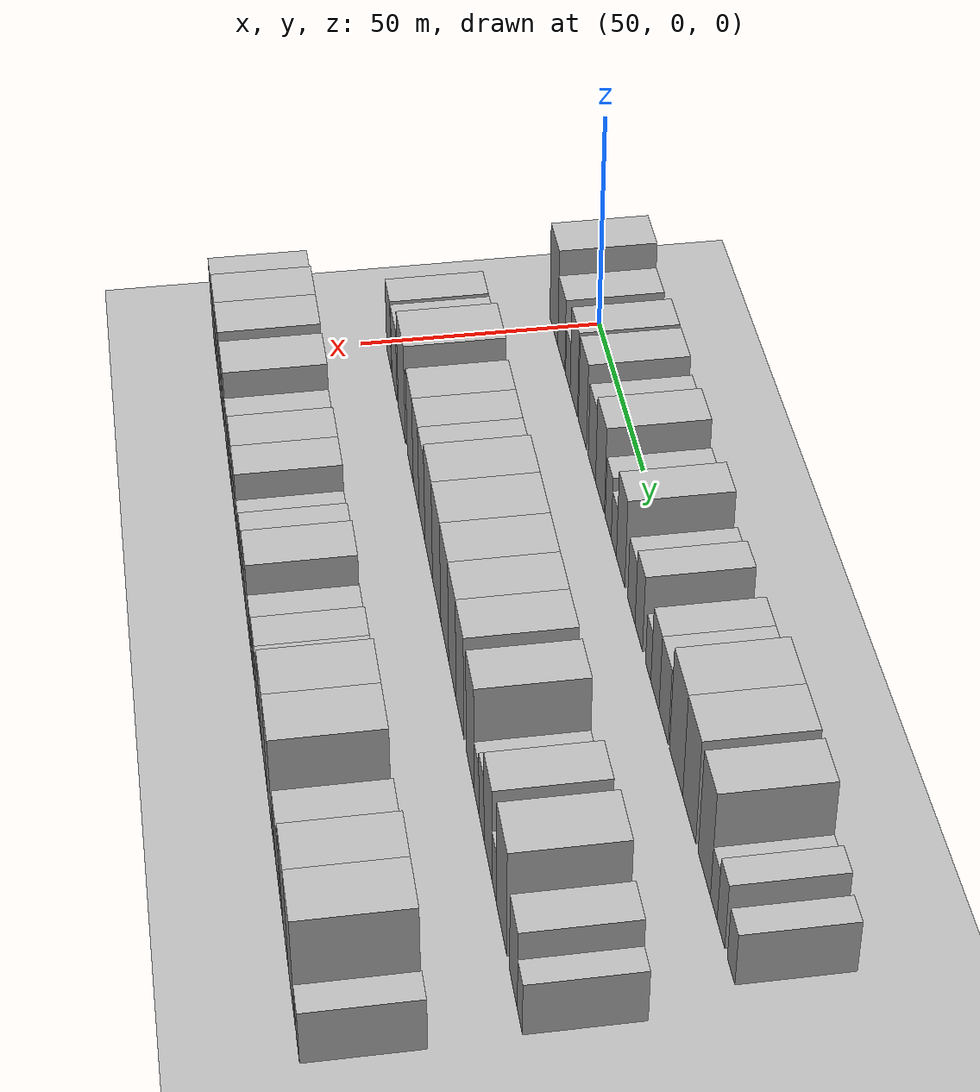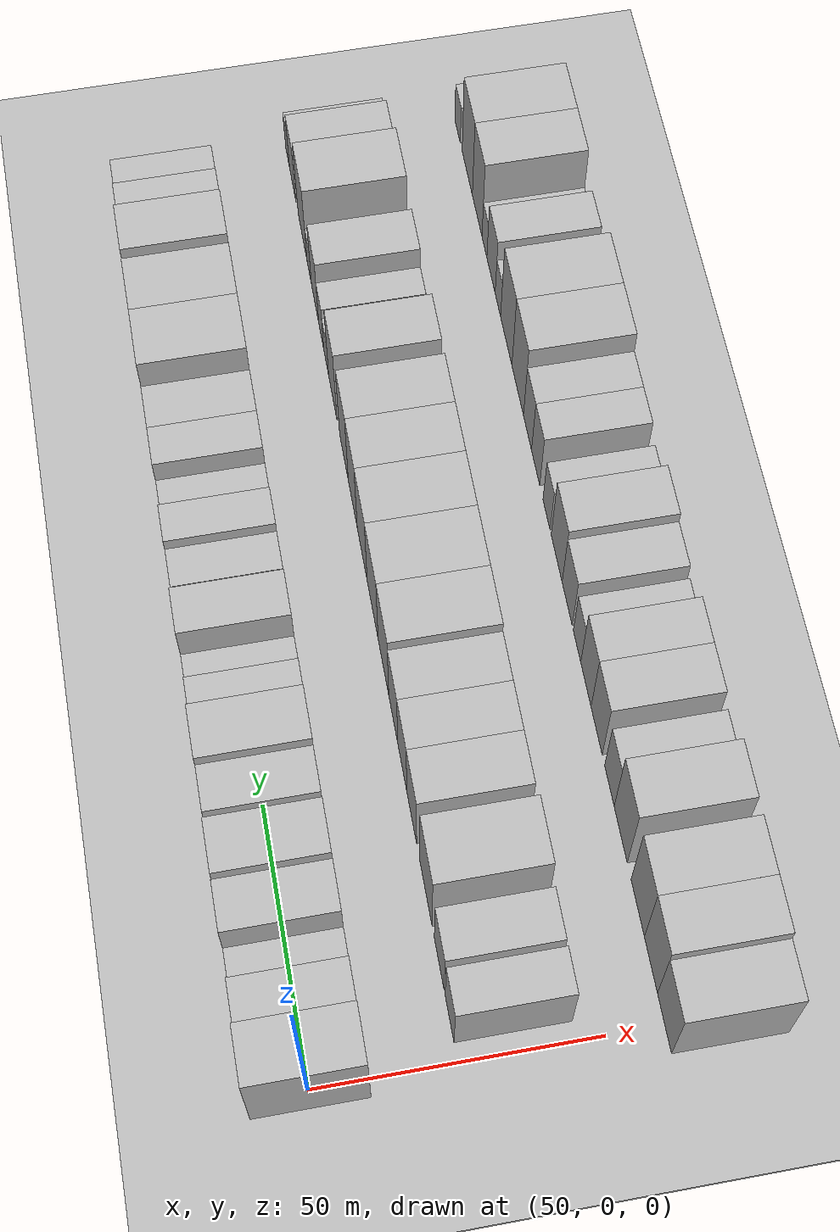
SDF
<sdf version="1.6">
 <world name="default">
  <include><name>ground_plane_1</name><uri>model://HANNAS_ground_plane</uri></include>
  <include>
   <name>ground_plane_2</name>
   <uri>model://HANNAS_ground_plane</uri>
   <pose>100 0 0  0 0 0</pose>
  </include>
  <model name="building_42">
   <static>1</static>
   <pose>50.0000 2.0145 0 0.000000 0.000000 0.000000</pose>
   <link name="link">
    <pose>0 0 12.00 0 0 0</pose>
    <collision name="collision"><geometry><box><size>20.0000 10.2558 24.0000</size></box></geometry></collision>
    <visual name="visual">
     <cast_shadows>0</cast_shadows>
     <geometry><box><size>20.0000 10.2558 24.0000</size></box></geometry>
     <material>
      <script>
       <uri>model://HANNAS_wall/materials/scripts</uri>
       <uri>model://HANNAS_wall/materials/textures</uri>
       <name>vrc/HANNAS_wall</name>
      </script>
     </material>
    </visual>
   </link>
  </model>
  <model name="building_43">
   <static>1</static>
   <pose>50.0000 11.5758 0 0.000000 0.000000 0.000000</pose>
   <link name="link">
    <pose>0 0 9.00 0 0 0</pose>
    <collision name="collision"><geometry><box><size>20.0000 8.8667 18.0000</size></box></geometry></collision>
    <visual name="visual">
     <cast_shadows>0</cast_shadows>
     <geometry><box><size>20.0000 8.8667 18.0000</size></box></geometry>
     <material>
      <script>
       <uri>model://HANNAS_wall/materials/scripts</uri>
       <uri>model://HANNAS_wall/materials/textures</uri>
       <name>vrc/HANNAS_wall</name>
      </script>
     </material>
    </visual>
   </link>
  </model>
  <model name="building_44">
   <static>1</static>
   <pose>50.0000 19.8012 0 0.000000 0.000000 0.000000</pose>
   <link name="link">
    <pose>0 0 6.00 0 0 0</pose>
    <collision name="collision"><geometry><box><size>20.0000 5.5843 12.0000</size></box></geometry></collision>
    <visual name="visual">
     <cast_shadows>0</cast_shadows>
     <geometry><box><size>20.0000 5.5843 12.0000</size></box></geometry>
     <material>
      <script>
       <uri>model://HANNAS_wall/materials/scripts</uri>
       <uri>model://HANNAS_wall/materials/textures</uri>
       <name>vrc/HANNAS_wall</name>
      </script>
     </material>
    </visual>
   </link>
  </model>
  <model name="building_45">
   <static>1</static>
   <pose>50.0000 27.0636 0 0.000000 0.000000 0.000000</pose>
   <link name="link">
    <pose>0 0 10.50 0 0 0</pose>
    <collision name="collision"><geometry><box><size>20.0000 8.9404 21.0000</size></box></geometry></collision>
    <visual name="visual">
     <cast_shadows>0</cast_shadows>
     <geometry><box><size>20.0000 8.9404 21.0000</size></box></geometry>
     <material>
      <script>
       <uri>model://HANNAS_wall/materials/scripts</uri>
       <uri>model://HANNAS_wall/materials/textures</uri>
       <name>vrc/HANNAS_wall</name>
      </script>
     </material>
    </visual>
   </link>
  </model>
  <model name="building_46">
   <static>1</static>
   <pose>50.0000 37.3804 0 0.000000 0.000000 0.000000</pose>
   <link name="link">
    <pose>0 0 10.50 0 0 0</pose>
    <collision name="collision"><geometry><box><size>20.0000 9.6932 21.0000</size></box></geometry></collision>
    <visual name="visual">
     <cast_shadows>0</cast_shadows>
     <geometry><box><size>20.0000 9.6932 21.0000</size></box></geometry>
     <material>
      <script>
       <uri>model://HANNAS_wall/materials/scripts</uri>
       <uri>model://HANNAS_wall/materials/textures</uri>
       <name>vrc/HANNAS_wall</name>
      </script>
     </material>
    </visual>
   </link>
  </model>
  <model name="building_47">
   <static>1</static>
   <pose>50.0000 48.4204 0 0.000000 0.000000 0.000000</pose>
   <link name="link">
    <pose>0 0 9.00 0 0 0</pose>
    <collision name="collision"><geometry><box><size>20.0000 8.3869 18.0000</size></box></geometry></collision>
    <visual name="visual">
     <cast_shadows>0</cast_shadows>
     <geometry><box><size>20.0000 8.3869 18.0000</size></box></geometry>
     <material>
      <script>
       <uri>model://HANNAS_wall/materials/scripts</uri>
       <uri>model://HANNAS_wall/materials/textures</uri>
       <name>vrc/HANNAS_wall</name>
      </script>
     </material>
    </visual>
   </link>
  </model>
  <model name="building_48">
   <static>1</static>
   <pose>50.0000 57.5546 0 0.000000 0.000000 0.000000</pose>
   <link name="link">
    <pose>0 0 10.50 0 0 0</pose>
    <collision name="collision"><geometry><box><size>20.0000 9.8814 21.0000</size></box></geometry></collision>
    <visual name="visual">
     <cast_shadows>0</cast_shadows>
     <geometry><box><size>20.0000 9.8814 21.0000</size></box></geometry>
     <material>
      <script>
       <uri>model://HANNAS_wall/materials/scripts</uri>
       <uri>model://HANNAS_wall/materials/textures</uri>
       <name>vrc/HANNAS_wall</name>
      </script>
     </material>
    </visual>
   </link>
  </model>
  <model name="building_49">
   <static>1</static>
   <pose>50.0000 66.7380 0 0.000000 0.000000 0.000000</pose>
   <link name="link">
    <pose>0 0 7.50 0 0 0</pose>
    <collision name="collision"><geometry><box><size>20.0000 6.4854 15.0000</size></box></geometry></collision>
    <visual name="visual">
     <cast_shadows>0</cast_shadows>
     <geometry><box><size>20.0000 6.4854 15.0000</size></box></geometry>
     <material>
      <script>
       <uri>model://HANNAS_wall/materials/scripts</uri>
       <uri>model://HANNAS_wall/materials/textures</uri>
       <name>vrc/HANNAS_wall</name>
      </script>
     </material>
    </visual>
   </link>
  </model>
  <model name="building_50">
   <static>1</static>
   <pose>50.0000 72.7875 0 0.000000 0.000000 0.000000</pose>
   <link name="link">
    <pose>0 0 6.00 0 0 0</pose>
    <collision name="collision"><geometry><box><size>20.0000 5.6137 12.0000</size></box></geometry></collision>
    <visual name="visual">
     <cast_shadows>0</cast_shadows>
     <geometry><box><size>20.0000 5.6137 12.0000</size></box></geometry>
     <material>
      <script>
       <uri>model://HANNAS_wall/materials/scripts</uri>
       <uri>model://HANNAS_wall/materials/textures</uri>
       <name>vrc/HANNAS_wall</name>
      </script>
     </material>
    </visual>
   </link>
  </model>
  <model name="building_51">
   <static>1</static>
   <pose>50.0000 79.9788 0 0.000000 0.000000 0.000000</pose>
   <link name="link">
    <pose>0 0 10.50 0 0 0</pose>
    <collision name="collision"><geometry><box><size>20.0000 8.7689 21.0000</size></box></geometry></collision>
    <visual name="visual">
     <cast_shadows>0</cast_shadows>
     <geometry><box><size>20.0000 8.7689 21.0000</size></box></geometry>
     <material>
      <script>
       <uri>model://HANNAS_wall/materials/scripts</uri>
       <uri>model://HANNAS_wall/materials/textures</uri>
       <name>vrc/HANNAS_wall</name>
      </script>
     </material>
    </visual>
   </link>
  </model>
  <model name="building_52">
   <static>1</static>
   <pose>50.0000 91.1030 0 0.000000 0.000000 0.000000</pose>
   <link name="link">
    <pose>0 0 7.50 0 0 0</pose>
    <collision name="collision"><geometry><box><size>20.0000 7.4795 15.0000</size></box></geometry></collision>
    <visual name="visual">
     <cast_shadows>0</cast_shadows>
     <geometry><box><size>20.0000 7.4795 15.0000</size></box></geometry>
     <material>
      <script>
       <uri>model://HANNAS_wall/materials/scripts</uri>
       <uri>model://HANNAS_wall/materials/textures</uri>
       <name>vrc/HANNAS_wall</name>
      </script>
     </material>
    </visual>
   </link>
  </model>
  <model name="building_53">
   <static>1</static>
   <pose>50.0000 98.5511 0 0.000000 0.000000 0.000000</pose>
   <link name="link">
    <pose>0 0 9.00 0 0 0</pose>
    <collision name="collision"><geometry><box><size>20.0000 7.4168 18.0000</size></box></geometry></collision>
    <visual name="visual">
     <cast_shadows>0</cast_shadows>
     <geometry><box><size>20.0000 7.4168 18.0000</size></box></geometry>
     <material>
      <script>
       <uri>model://HANNAS_wall/materials/scripts</uri>
       <uri>model://HANNAS_wall/materials/textures</uri>
       <name>vrc/HANNAS_wall</name>
      </script>
     </material>
    </visual>
   </link>
  </model>
  <model name="building_54">
   <static>1</static>
   <pose>50.0000 107.8396 0 0.000000 0.000000 0.000000</pose>
   <link name="link">
    <pose>0 0 6.00 0 0 0</pose>
    <collision name="collision"><geometry><box><size>20.0000 5.1601 12.0000</size></box></geometry></collision>
    <visual name="visual">
     <cast_shadows>0</cast_shadows>
     <geometry><box><size>20.0000 5.1601 12.0000</size></box></geometry>
     <material>
      <script>
       <uri>model://HANNAS_wall/materials/scripts</uri>
       <uri>model://HANNAS_wall/materials/textures</uri>
       <name>vrc/HANNAS_wall</name>
      </script>
     </material>
    </visual>
   </link>
  </model>
  <model name="building_55">
   <static>1</static>
   <pose>50.0000 114.2799 0 0.000000 0.000000 0.000000</pose>
   <link name="link">
    <pose>0 0 9.00 0 0 0</pose>
    <collision name="collision"><geometry><box><size>20.0000 7.7204 18.0000</size></box></geometry></collision>
    <visual name="visual">
     <cast_shadows>0</cast_shadows>
     <geometry><box><size>20.0000 7.7204 18.0000</size></box></geometry>
     <material>
      <script>
       <uri>model://HANNAS_wall/materials/scripts</uri>
       <uri>model://HANNAS_wall/materials/textures</uri>
       <name>vrc/HANNAS_wall</name>
      </script>
     </material>
    </visual>
   </link>
  </model>
  <model name="building_56">
   <static>1</static>
   <pose>50.0000 122.4917 0 0.000000 0.000000 0.000000</pose>
   <link name="link">
    <pose>0 0 9.00 0 0 0</pose>
    <collision name="collision"><geometry><box><size>20.0000 8.7033 18.0000</size></box></geometry></collision>
    <visual name="visual">
     <cast_shadows>0</cast_shadows>
     <geometry><box><size>20.0000 8.7033 18.0000</size></box></geometry>
     <material>
      <script>
       <uri>model://HANNAS_wall/materials/scripts</uri>
       <uri>model://HANNAS_wall/materials/textures</uri>
       <name>vrc/HANNAS_wall</name>
      </script>
     </material>
    </visual>
   </link>
  </model>
  <model name="building_57">
   <static>1</static>
   <pose>50.0000 133.7876 0 0.000000 0.000000 0.000000</pose>
   <link name="link">
    <pose>0 0 12.00 0 0 0</pose>
    <collision name="collision"><geometry><box><size>20.0000 11.8883 24.0000</size></box></geometry></collision>
    <visual name="visual">
     <cast_shadows>0</cast_shadows>
     <geometry><box><size>20.0000 11.8883 24.0000</size></box></geometry>
     <material>
      <script>
       <uri>model://HANNAS_wall/materials/scripts</uri>
       <uri>model://HANNAS_wall/materials/textures</uri>
       <name>vrc/HANNAS_wall</name>
      </script>
     </material>
    </visual>
   </link>
  </model>
  <model name="building_58">
   <static>1</static>
   <pose>50.0000 145.3474 0 0.000000 0.000000 0.000000</pose>
   <link name="link">
    <pose>0 0 12.00 0 0 0</pose>
    <collision name="collision"><geometry><box><size>20.0000 11.2313 24.0000</size></box></geometry></collision>
    <visual name="visual">
     <cast_shadows>0</cast_shadows>
     <geometry><box><size>20.0000 11.2313 24.0000</size></box></geometry>
     <material>
      <script>
       <uri>model://HANNAS_wall/materials/scripts</uri>
       <uri>model://HANNAS_wall/materials/textures</uri>
       <name>vrc/HANNAS_wall</name>
      </script>
     </material>
    </visual>
   </link>
  </model>
  <model name="building_59">
   <static>1</static>
   <pose>50.0000 158.0487 0 0.000000 0.000000 0.000000</pose>
   <link name="link">
    <pose>0 0 12.00 0 0 0</pose>
    <collision name="collision"><geometry><box><size>20.0000 10.1713 24.0000</size></box></geometry></collision>
    <visual name="visual">
     <cast_shadows>0</cast_shadows>
     <geometry><box><size>20.0000 10.1713 24.0000</size></box></geometry>
     <material>
      <script>
       <uri>model://HANNAS_wall/materials/scripts</uri>
       <uri>model://HANNAS_wall/materials/textures</uri>
       <name>vrc/HANNAS_wall</name>
      </script>
     </material>
    </visual>
   </link>
  </model>
  <model name="building_60">
   <static>1</static>
   <pose>50.0000 165.8524 0 0.000000 0.000000 0.000000</pose>
   <link name="link">
    <pose>0 0 6.00 0 0 0</pose>
    <collision name="collision"><geometry><box><size>20.0000 5.4362 12.0000</size></box></geometry></collision>
    <visual name="visual">
     <cast_shadows>0</cast_shadows>
     <geometry><box><size>20.0000 5.4362 12.0000</size></box></geometry>
     <material>
      <script>
       <uri>model://HANNAS_wall/materials/scripts</uri>
       <uri>model://HANNAS_wall/materials/textures</uri>
       <name>vrc/HANNAS_wall</name>
      </script>
     </material>
    </visual>
   </link>
  </model>
  <model name="building_61">
   <static>1</static>
   <pose>50.0000 171.6089 0 0.000000 0.000000 0.000000</pose>
   <link name="link">
    <pose>0 0 7.50 0 0 0</pose>
    <collision name="collision"><geometry><box><size>20.0000 6.0768 15.0000</size></box></geometry></collision>
    <visual name="visual">
     <cast_shadows>0</cast_shadows>
     <geometry><box><size>20.0000 6.0768 15.0000</size></box></geometry>
     <material>
      <script>
       <uri>model://HANNAS_wall/materials/scripts</uri>
       <uri>model://HANNAS_wall/materials/textures</uri>
       <name>vrc/HANNAS_wall</name>
      </script>
     </material>
    </visual>
   </link>
  </model>
  <model name="building_62">
   <static>1</static>
   <pose>50.0000 179.5589 0 0.000000 0.000000 0.000000</pose>
   <link name="link">
    <pose>0 0 6.00 0 0 0</pose>
    <collision name="collision"><geometry><box><size>20.0000 5.8232 12.0000</size></box></geometry></collision>
    <visual name="visual">
     <cast_shadows>0</cast_shadows>
     <geometry><box><size>20.0000 5.8232 12.0000</size></box></geometry>
     <material>
      <script>
       <uri>model://HANNAS_wall/materials/scripts</uri>
       <uri>model://HANNAS_wall/materials/textures</uri>
       <name>vrc/HANNAS_wall</name>
      </script>
     </material>
    </visual>
   </link>
  </model>
  <model name="building_123">
   <static>1</static>
   <pose>85.0000 7.3143 0 0.000000 0.000000 0.000000</pose>
   <link name="link">
    <pose>0 0 9.00 0 0 0</pose>
    <collision name="collision"><geometry><box><size>20.0000 8.0273 18.0000</size></box></geometry></collision>
    <visual name="visual">
     <cast_shadows>0</cast_shadows>
     <geometry><box><size>20.0000 8.0273 18.0000</size></box></geometry>
     <material>
      <script>
       <uri>model://HANNAS_wall/materials/scripts</uri>
       <uri>model://HANNAS_wall/materials/textures</uri>
       <name>vrc/HANNAS_wall</name>
      </script>
     </material>
    </visual>
   </link>
  </model>
  <model name="building_124">
   <static>1</static>
   <pose>85.0000 16.8257 0 0.000000 0.000000 0.000000</pose>
   <link name="link">
    <pose>0 0 9.00 0 0 0</pose>
    <collision name="collision"><geometry><box><size>20.0000 8.9954 18.0000</size></box></geometry></collision>
    <visual name="visual">
     <cast_shadows>0</cast_shadows>
     <geometry><box><size>20.0000 8.9954 18.0000</size></box></geometry>
     <material>
      <script>
       <uri>model://HANNAS_wall/materials/scripts</uri>
       <uri>model://HANNAS_wall/materials/textures</uri>
       <name>vrc/HANNAS_wall</name>
      </script>
     </material>
    </visual>
   </link>
  </model>
  <model name="building_125">
   <static>1</static>
   <pose>85.0000 29.2613 0 0.000000 0.000000 0.000000</pose>
   <link name="link">
    <pose>0 0 12.00 0 0 0</pose>
    <collision name="collision"><geometry><box><size>20.0000 11.8758 24.0000</size></box></geometry></collision>
    <visual name="visual">
     <cast_shadows>0</cast_shadows>
     <geometry><box><size>20.0000 11.8758 24.0000</size></box></geometry>
     <material>
      <script>
       <uri>model://HANNAS_wall/materials/scripts</uri>
       <uri>model://HANNAS_wall/materials/textures</uri>
       <name>vrc/HANNAS_wall</name>
      </script>
     </material>
    </visual>
   </link>
  </model>
  <model name="building_126">
   <static>1</static>
   <pose>85.0000 43.0329 0 0.000000 0.000000 0.000000</pose>
   <link name="link">
    <pose>0 0 10.50 0 0 0</pose>
    <collision name="collision"><geometry><box><size>20.0000 9.6675 21.0000</size></box></geometry></collision>
    <visual name="visual">
     <cast_shadows>0</cast_shadows>
     <geometry><box><size>20.0000 9.6675 21.0000</size></box></geometry>
     <material>
      <script>
       <uri>model://HANNAS_wall/materials/scripts</uri>
       <uri>model://HANNAS_wall/materials/textures</uri>
       <name>vrc/HANNAS_wall</name>
      </script>
     </material>
    </visual>
   </link>
  </model>
  <model name="building_127">
   <static>1</static>
   <pose>85.0000 52.4043 0 0.000000 0.000000 0.000000</pose>
   <link name="link">
    <pose>0 0 10.50 0 0 0</pose>
    <collision name="collision"><geometry><box><size>20.0000 9.0753 21.0000</size></box></geometry></collision>
    <visual name="visual">
     <cast_shadows>0</cast_shadows>
     <geometry><box><size>20.0000 9.0753 21.0000</size></box></geometry>
     <material>
      <script>
       <uri>model://HANNAS_wall/materials/scripts</uri>
       <uri>model://HANNAS_wall/materials/textures</uri>
       <name>vrc/HANNAS_wall</name>
      </script>
     </material>
    </visual>
   </link>
  </model>
  <model name="building_128">
   <static>1</static>
   <pose>85.0000 61.5361 0 0.000000 0.000000 0.000000</pose>
   <link name="link">
    <pose>0 0 10.50 0 0 0</pose>
    <collision name="collision"><geometry><box><size>20.0000 9.1882 21.0000</size></box></geometry></collision>
    <visual name="visual">
     <cast_shadows>0</cast_shadows>
     <geometry><box><size>20.0000 9.1882 21.0000</size></box></geometry>
     <material>
      <script>
       <uri>model://HANNAS_wall/materials/scripts</uri>
       <uri>model://HANNAS_wall/materials/textures</uri>
       <name>vrc/HANNAS_wall</name>
      </script>
     </material>
    </visual>
   </link>
  </model>
  <model name="building_129">
   <static>1</static>
   <pose>85.0000 71.7439 0 0.000000 0.000000 0.000000</pose>
   <link name="link">
    <pose>0 0 12.00 0 0 0</pose>
    <collision name="collision"><geometry><box><size>20.0000 11.2275 24.0000</size></box></geometry></collision>
    <visual name="visual">
     <cast_shadows>0</cast_shadows>
     <geometry><box><size>20.0000 11.2275 24.0000</size></box></geometry>
     <material>
      <script>
       <uri>model://HANNAS_wall/materials/scripts</uri>
       <uri>model://HANNAS_wall/materials/textures</uri>
       <name>vrc/HANNAS_wall</name>
      </script>
     </material>
    </visual>
   </link>
  </model>
  <model name="building_130">
   <static>1</static>
   <pose>85.0000 83.2517 0 0.000000 0.000000 0.000000</pose>
   <link name="link">
    <pose>0 0 12.00 0 0 0</pose>
    <collision name="collision"><geometry><box><size>20.0000 11.7880 24.0000</size></box></geometry></collision>
    <visual name="visual">
     <cast_shadows>0</cast_shadows>
     <geometry><box><size>20.0000 11.7880 24.0000</size></box></geometry>
     <material>
      <script>
       <uri>model://HANNAS_wall/materials/scripts</uri>
       <uri>model://HANNAS_wall/materials/textures</uri>
       <name>vrc/HANNAS_wall</name>
      </script>
     </material>
    </visual>
   </link>
  </model>
  <model name="building_131">
   <static>1</static>
   <pose>85.0000 94.6155 0 0.000000 0.000000 0.000000</pose>
   <link name="link">
    <pose>0 0 12.00 0 0 0</pose>
    <collision name="collision"><geometry><box><size>20.0000 10.9397 24.0000</size></box></geometry></collision>
    <visual name="visual">
     <cast_shadows>0</cast_shadows>
     <geometry><box><size>20.0000 10.9397 24.0000</size></box></geometry>
     <material>
      <script>
       <uri>model://HANNAS_wall/materials/scripts</uri>
       <uri>model://HANNAS_wall/materials/textures</uri>
       <name>vrc/HANNAS_wall</name>
      </script>
     </material>
    </visual>
   </link>
  </model>
  <model name="building_132">
   <static>1</static>
   <pose>85.0000 105.1542 0 0.000000 0.000000 0.000000</pose>
   <link name="link">
    <pose>0 0 12.00 0 0 0</pose>
    <collision name="collision"><geometry><box><size>20.0000 10.1377 24.0000</size></box></geometry></collision>
    <visual name="visual">
     <cast_shadows>0</cast_shadows>
     <geometry><box><size>20.0000 10.1377 24.0000</size></box></geometry>
     <material>
      <script>
       <uri>model://HANNAS_wall/materials/scripts</uri>
       <uri>model://HANNAS_wall/materials/textures</uri>
       <name>vrc/HANNAS_wall</name>
      </script>
     </material>
    </visual>
   </link>
  </model>
  <model name="building_133">
   <static>1</static>
   <pose>85.0000 115.2920 0 0.000000 0.000000 0.000000</pose>
   <link name="link">
    <pose>0 0 12.00 0 0 0</pose>
    <collision name="collision"><geometry><box><size>20.0000 10.1378 24.0000</size></box></geometry></collision>
    <visual name="visual">
     <cast_shadows>0</cast_shadows>
     <geometry><box><size>20.0000 10.1378 24.0000</size></box></geometry>
     <material>
      <script>
       <uri>model://HANNAS_wall/materials/scripts</uri>
       <uri>model://HANNAS_wall/materials/textures</uri>
       <name>vrc/HANNAS_wall</name>
      </script>
     </material>
    </visual>
   </link>
  </model>
  <model name="building_134">
   <static>1</static>
   <pose>85.0000 128.2858 0 0.000000 0.000000 0.000000</pose>
   <link name="link">
    <pose>0 0 12.00 0 0 0</pose>
    <collision name="collision"><geometry><box><size>20.0000 9.8499 24.0000</size></box></geometry></collision>
    <visual name="visual">
     <cast_shadows>0</cast_shadows>
     <geometry><box><size>20.0000 9.8499 24.0000</size></box></geometry>
     <material>
      <script>
       <uri>model://HANNAS_wall/materials/scripts</uri>
       <uri>model://HANNAS_wall/materials/textures</uri>
       <name>vrc/HANNAS_wall</name>
      </script>
     </material>
    </visual>
   </link>
  </model>
  <model name="building_135">
   <static>1</static>
   <pose>85.0000 136.1340 0 0.000000 0.000000 0.000000</pose>
   <link name="link">
    <pose>0 0 6.00 0 0 0</pose>
    <collision name="collision"><geometry><box><size>20.0000 5.8466 12.0000</size></box></geometry></collision>
    <visual name="visual">
     <cast_shadows>0</cast_shadows>
     <geometry><box><size>20.0000 5.8466 12.0000</size></box></geometry>
     <material>
      <script>
       <uri>model://HANNAS_wall/materials/scripts</uri>
       <uri>model://HANNAS_wall/materials/textures</uri>
       <name>vrc/HANNAS_wall</name>
      </script>
     </material>
    </visual>
   </link>
  </model>
  <model name="building_136">
   <static>1</static>
   <pose>85.0000 142.1239 0 0.000000 0.000000 0.000000</pose>
   <link name="link">
    <pose>0 0 7.50 0 0 0</pose>
    <collision name="collision"><geometry><box><size>20.0000 6.1332 15.0000</size></box></geometry></collision>
    <visual name="visual">
     <cast_shadows>0</cast_shadows>
     <geometry><box><size>20.0000 6.1332 15.0000</size></box></geometry>
     <material>
      <script>
       <uri>model://HANNAS_wall/materials/scripts</uri>
       <uri>model://HANNAS_wall/materials/textures</uri>
       <name>vrc/HANNAS_wall</name>
      </script>
     </material>
    </visual>
   </link>
  </model>
  <model name="building_137">
   <static>1</static>
   <pose>85.0000 149.7600 0 0.000000 0.000000 0.000000</pose>
   <link name="link">
    <pose>0 0 10.50 0 0 0</pose>
    <collision name="collision"><geometry><box><size>20.0000 9.1389 21.0000</size></box></geometry></collision>
    <visual name="visual">
     <cast_shadows>0</cast_shadows>
     <geometry><box><size>20.0000 9.1389 21.0000</size></box></geometry>
     <material>
      <script>
       <uri>model://HANNAS_wall/materials/scripts</uri>
       <uri>model://HANNAS_wall/materials/textures</uri>
       <name>vrc/HANNAS_wall</name>
      </script>
     </material>
    </visual>
   </link>
  </model>
  <model name="building_138">
   <static>1</static>
   <pose>85.0000 157.0724 0 0.000000 0.000000 0.000000</pose>
   <link name="link">
    <pose>0 0 6.00 0 0 0</pose>
    <collision name="collision"><geometry><box><size>20.0000 5.4860 12.0000</size></box></geometry></collision>
    <visual name="visual">
     <cast_shadows>0</cast_shadows>
     <geometry><box><size>20.0000 5.4860 12.0000</size></box></geometry>
     <material>
      <script>
       <uri>model://HANNAS_wall/materials/scripts</uri>
       <uri>model://HANNAS_wall/materials/textures</uri>
       <name>vrc/HANNAS_wall</name>
      </script>
     </material>
    </visual>
   </link>
  </model>
  <model name="building_139">
   <static>1</static>
   <pose>85.0000 165.5181 0 0.000000 0.000000 0.000000</pose>
   <link name="link">
    <pose>0 0 12.00 0 0 0</pose>
    <collision name="collision"><geometry><box><size>20.0000 11.4053 24.0000</size></box></geometry></collision>
    <visual name="visual">
     <cast_shadows>0</cast_shadows>
     <geometry><box><size>20.0000 11.4053 24.0000</size></box></geometry>
     <material>
      <script>
       <uri>model://HANNAS_wall/materials/scripts</uri>
       <uri>model://HANNAS_wall/materials/textures</uri>
       <name>vrc/HANNAS_wall</name>
      </script>
     </material>
    </visual>
   </link>
  </model>
  <model name="building_140">
   <static>1</static>
   <pose>85.0000 178.3668 0 0.000000 0.000000 0.000000</pose>
   <link name="link">
    <pose>0 0 9.00 0 0 0</pose>
    <collision name="collision"><geometry><box><size>20.0000 8.2923 18.0000</size></box></geometry></collision>
    <visual name="visual">
     <cast_shadows>0</cast_shadows>
     <geometry><box><size>20.0000 8.2923 18.0000</size></box></geometry>
     <material>
      <script>
       <uri>model://HANNAS_wall/materials/scripts</uri>
       <uri>model://HANNAS_wall/materials/textures</uri>
       <name>vrc/HANNAS_wall</name>
      </script>
     </material>
    </visual>
   </link>
  </model>
  <model name="building_141">
   <static>1</static>
   <pose>85.0000 185.1517 0 0.000000 0.000000 0.000000</pose>
   <link name="link">
    <pose>0 0 6.00 0 0 0</pose>
    <collision name="collision"><geometry><box><size>20.0000 5.2775 12.0000</size></box></geometry></collision>
    <visual name="visual">
     <cast_shadows>0</cast_shadows>
     <geometry><box><size>20.0000 5.2775 12.0000</size></box></geometry>
     <material>
      <script>
       <uri>model://HANNAS_wall/materials/scripts</uri>
       <uri>model://HANNAS_wall/materials/textures</uri>
       <name>vrc/HANNAS_wall</name>
      </script>
     </material>
    </visual>
   </link>
  </model>
  <model name="building_204">
   <static>1</static>
   <pose>120.0000 0.2238 0 0.000000 0.000000 0.000000</pose>
   <link name="link">
    <pose>0 0 10.50 0 0 0</pose>
    <collision name="collision"><geometry><box><size>20.0000 10.2792 21.0000</size></box></geometry></collision>
    <visual name="visual">
     <cast_shadows>0</cast_shadows>
     <geometry><box><size>20.0000 10.2792 21.0000</size></box></geometry>
     <material>
      <script>
       <uri>model://HANNAS_wall/materials/scripts</uri>
       <uri>model://HANNAS_wall/materials/textures</uri>
       <name>vrc/HANNAS_wall</name>
      </script>
     </material>
    </visual>
   </link>
  </model>
  <model name="building_205">
   <static>1</static>
   <pose>120.0000 10.2749 0 0.000000 0.000000 0.000000</pose>
   <link name="link">
    <pose>0 0 12.00 0 0 0</pose>
    <collision name="collision"><geometry><box><size>20.0000 9.8230 24.0000</size></box></geometry></collision>
    <visual name="visual">
     <cast_shadows>0</cast_shadows>
     <geometry><box><size>20.0000 9.8230 24.0000</size></box></geometry>
     <material>
      <script>
       <uri>model://HANNAS_wall/materials/scripts</uri>
       <uri>model://HANNAS_wall/materials/textures</uri>
       <name>vrc/HANNAS_wall</name>
      </script>
     </material>
    </visual>
   </link>
  </model>
  <model name="building_206">
   <static>1</static>
   <pose>120.0000 20.2909 0 0.000000 0.000000 0.000000</pose>
   <link name="link">
    <pose>0 0 12.00 0 0 0</pose>
    <collision name="collision"><geometry><box><size>20.0000 10.2088 24.0000</size></box></geometry></collision>
    <visual name="visual">
     <cast_shadows>0</cast_shadows>
     <geometry><box><size>20.0000 10.2088 24.0000</size></box></geometry>
     <material>
      <script>
       <uri>model://HANNAS_wall/materials/scripts</uri>
       <uri>model://HANNAS_wall/materials/textures</uri>
       <name>vrc/HANNAS_wall</name>
      </script>
     </material>
    </visual>
   </link>
  </model>
  <model name="building_207">
   <static>1</static>
   <pose>120.0000 33.5786 0 0.000000 0.000000 0.000000</pose>
   <link name="link">
    <pose>0 0 12.00 0 0 0</pose>
    <collision name="collision"><geometry><box><size>20.0000 10.3667 24.0000</size></box></geometry></collision>
    <visual name="visual">
     <cast_shadows>0</cast_shadows>
     <geometry><box><size>20.0000 10.3667 24.0000</size></box></geometry>
     <material>
      <script>
       <uri>model://HANNAS_wall/materials/scripts</uri>
       <uri>model://HANNAS_wall/materials/textures</uri>
       <name>vrc/HANNAS_wall</name>
      </script>
     </material>
    </visual>
   </link>
  </model>
  <model name="building_208">
   <static>1</static>
   <pose>120.0000 42.6038 0 0.000000 0.000000 0.000000</pose>
   <link name="link">
    <pose>0 0 9.00 0 0 0</pose>
    <collision name="collision"><geometry><box><size>20.0000 7.6836 18.0000</size></box></geometry></collision>
    <visual name="visual">
     <cast_shadows>0</cast_shadows>
     <geometry><box><size>20.0000 7.6836 18.0000</size></box></geometry>
     <material>
      <script>
       <uri>model://HANNAS_wall/materials/scripts</uri>
       <uri>model://HANNAS_wall/materials/textures</uri>
       <name>vrc/HANNAS_wall</name>
      </script>
     </material>
    </visual>
   </link>
  </model>
  <model name="building_209">
   <static>1</static>
   <pose>120.0000 53.0552 0 0.000000 0.000000 0.000000</pose>
   <link name="link">
    <pose>0 0 10.50 0 0 0</pose>
    <collision name="collision"><geometry><box><size>20.0000 9.2193 21.0000</size></box></geometry></collision>
    <visual name="visual">
     <cast_shadows>0</cast_shadows>
     <geometry><box><size>20.0000 9.2193 21.0000</size></box></geometry>
     <material>
      <script>
       <uri>model://HANNAS_wall/materials/scripts</uri>
       <uri>model://HANNAS_wall/materials/textures</uri>
       <name>vrc/HANNAS_wall</name>
      </script>
     </material>
    </visual>
   </link>
  </model>
  <model name="building_210">
   <static>1</static>
   <pose>120.0000 62.0169 0 0.000000 0.000000 0.000000</pose>
   <link name="link">
    <pose>0 0 10.50 0 0 0</pose>
    <collision name="collision"><geometry><box><size>20.0000 8.7039 21.0000</size></box></geometry></collision>
    <visual name="visual">
     <cast_shadows>0</cast_shadows>
     <geometry><box><size>20.0000 8.7039 21.0000</size></box></geometry>
     <material>
      <script>
       <uri>model://HANNAS_wall/materials/scripts</uri>
       <uri>model://HANNAS_wall/materials/textures</uri>
       <name>vrc/HANNAS_wall</name>
      </script>
     </material>
    </visual>
   </link>
  </model>
  <model name="building_211">
   <static>1</static>
   <pose>120.0000 69.5715 0 0.000000 0.000000 0.000000</pose>
   <link name="link">
    <pose>0 0 7.50 0 0 0</pose>
    <collision name="collision"><geometry><box><size>20.0000 6.4054 15.0000</size></box></geometry></collision>
    <visual name="visual">
     <cast_shadows>0</cast_shadows>
     <geometry><box><size>20.0000 6.4054 15.0000</size></box></geometry>
     <material>
      <script>
       <uri>model://HANNAS_wall/materials/scripts</uri>
       <uri>model://HANNAS_wall/materials/textures</uri>
       <name>vrc/HANNAS_wall</name>
      </script>
     </material>
    </visual>
   </link>
  </model>
  <model name="building_212">
   <static>1</static>
   <pose>120.0000 78.1821 0 0.000000 0.000000 0.000000</pose>
   <link name="link">
    <pose>0 0 9.00 0 0 0</pose>
    <collision name="collision"><geometry><box><size>20.0000 8.8157 18.0000</size></box></geometry></collision>
    <visual name="visual">
     <cast_shadows>0</cast_shadows>
     <geometry><box><size>20.0000 8.8157 18.0000</size></box></geometry>
     <material>
      <script>
       <uri>model://HANNAS_wall/materials/scripts</uri>
       <uri>model://HANNAS_wall/materials/textures</uri>
       <name>vrc/HANNAS_wall</name>
      </script>
     </material>
    </visual>
   </link>
  </model>
  <model name="building_213">
   <static>1</static>
   <pose>120.0000 87.5007 0 0.000000 0.000000 0.000000</pose>
   <link name="link">
    <pose>0 0 10.50 0 0 0</pose>
    <collision name="collision"><geometry><box><size>20.0000 9.8215 21.0000</size></box></geometry></collision>
    <visual name="visual">
     <cast_shadows>0</cast_shadows>
     <geometry><box><size>20.0000 9.8215 21.0000</size></box></geometry>
     <material>
      <script>
       <uri>model://HANNAS_wall/materials/scripts</uri>
       <uri>model://HANNAS_wall/materials/textures</uri>
       <name>vrc/HANNAS_wall</name>
      </script>
     </material>
    </visual>
   </link>
  </model>
  <model name="building_214">
   <static>1</static>
   <pose>120.0000 96.6339 0 0.000000 0.000000 0.000000</pose>
   <link name="link">
    <pose>0 0 7.50 0 0 0</pose>
    <collision name="collision"><geometry><box><size>20.0000 6.4449 15.0000</size></box></geometry></collision>
    <visual name="visual">
     <cast_shadows>0</cast_shadows>
     <geometry><box><size>20.0000 6.4449 15.0000</size></box></geometry>
     <material>
      <script>
       <uri>model://HANNAS_wall/materials/scripts</uri>
       <uri>model://HANNAS_wall/materials/textures</uri>
       <name>vrc/HANNAS_wall</name>
      </script>
     </material>
    </visual>
   </link>
  </model>
  <model name="building_215">
   <static>1</static>
   <pose>120.0000 106.6709 0 0.000000 0.000000 0.000000</pose>
   <link name="link">
    <pose>0 0 9.00 0 0 0</pose>
    <collision name="collision"><geometry><box><size>20.0000 7.6291 18.0000</size></box></geometry></collision>
    <visual name="visual">
     <cast_shadows>0</cast_shadows>
     <geometry><box><size>20.0000 7.6291 18.0000</size></box></geometry>
     <material>
      <script>
       <uri>model://HANNAS_wall/materials/scripts</uri>
       <uri>model://HANNAS_wall/materials/textures</uri>
       <name>vrc/HANNAS_wall</name>
      </script>
     </material>
    </visual>
   </link>
  </model>
  <model name="building_216">
   <static>1</static>
   <pose>120.0000 114.3307 0 0.000000 0.000000 0.000000</pose>
   <link name="link">
    <pose>0 0 9.00 0 0 0</pose>
    <collision name="collision"><geometry><box><size>20.0000 7.6905 18.0000</size></box></geometry></collision>
    <visual name="visual">
     <cast_shadows>0</cast_shadows>
     <geometry><box><size>20.0000 7.6905 18.0000</size></box></geometry>
     <material>
      <script>
       <uri>model://HANNAS_wall/materials/scripts</uri>
       <uri>model://HANNAS_wall/materials/textures</uri>
       <name>vrc/HANNAS_wall</name>
      </script>
     </material>
    </visual>
   </link>
  </model>
  <model name="building_217">
   <static>1</static>
   <pose>120.0000 123.7533 0 0.000000 0.000000 0.000000</pose>
   <link name="link">
    <pose>0 0 12.00 0 0 0</pose>
    <collision name="collision"><geometry><box><size>20.0000 11.1547 24.0000</size></box></geometry></collision>
    <visual name="visual">
     <cast_shadows>0</cast_shadows>
     <geometry><box><size>20.0000 11.1547 24.0000</size></box></geometry>
     <material>
      <script>
       <uri>model://HANNAS_wall/materials/scripts</uri>
       <uri>model://HANNAS_wall/materials/textures</uri>
       <name>vrc/HANNAS_wall</name>
      </script>
     </material>
    </visual>
   </link>
  </model>
  <model name="building_218">
   <static>1</static>
   <pose>120.0000 134.9543 0 0.000000 0.000000 0.000000</pose>
   <link name="link">
    <pose>0 0 12.00 0 0 0</pose>
    <collision name="collision"><geometry><box><size>20.0000 11.2472 24.0000</size></box></geometry></collision>
    <visual name="visual">
     <cast_shadows>0</cast_shadows>
     <geometry><box><size>20.0000 11.2472 24.0000</size></box></geometry>
     <material>
      <script>
       <uri>model://HANNAS_wall/materials/scripts</uri>
       <uri>model://HANNAS_wall/materials/textures</uri>
       <name>vrc/HANNAS_wall</name>
      </script>
     </material>
    </visual>
   </link>
  </model>
  <model name="building_219">
   <static>1</static>
   <pose>120.0000 143.2959 0 0.000000 0.000000 0.000000</pose>
   <link name="link">
    <pose>0 0 6.00 0 0 0</pose>
    <collision name="collision"><geometry><box><size>20.0000 5.4361 12.0000</size></box></geometry></collision>
    <visual name="visual">
     <cast_shadows>0</cast_shadows>
     <geometry><box><size>20.0000 5.4361 12.0000</size></box></geometry>
     <material>
      <script>
       <uri>model://HANNAS_wall/materials/scripts</uri>
       <uri>model://HANNAS_wall/materials/textures</uri>
       <name>vrc/HANNAS_wall</name>
      </script>
     </material>
    </visual>
   </link>
  </model>
  <model name="building_220">
   <static>1</static>
   <pose>120.0000 150.2177 0 0.000000 0.000000 0.000000</pose>
   <link name="link">
    <pose>0 0 9.00 0 0 0</pose>
    <collision name="collision"><geometry><box><size>20.0000 8.4075 18.0000</size></box></geometry></collision>
    <visual name="visual">
     <cast_shadows>0</cast_shadows>
     <geometry><box><size>20.0000 8.4075 18.0000</size></box></geometry>
     <material>
      <script>
       <uri>model://HANNAS_wall/materials/scripts</uri>
       <uri>model://HANNAS_wall/materials/textures</uri>
       <name>vrc/HANNAS_wall</name>
      </script>
     </material>
    </visual>
   </link>
  </model>
  <model name="building_221">
   <static>1</static>
   <pose>120.0000 156.9731 0 0.000000 0.000000 0.000000</pose>
   <link name="link">
    <pose>0 0 6.00 0 0 0</pose>
    <collision name="collision"><geometry><box><size>20.0000 5.1034 12.0000</size></box></geometry></collision>
    <visual name="visual">
     <cast_shadows>0</cast_shadows>
     <geometry><box><size>20.0000 5.1034 12.0000</size></box></geometry>
     <material>
      <script>
       <uri>model://HANNAS_wall/materials/scripts</uri>
       <uri>model://HANNAS_wall/materials/textures</uri>
       <name>vrc/HANNAS_wall</name>
      </script>
     </material>
    </visual>
   </link>
  </model>
  <model name="building_222">
   <static>1</static>
   <pose>120.0000 164.5662 0 0.000000 0.000000 0.000000</pose>
   <link name="link">
    <pose>0 0 12.00 0 0 0</pose>
    <collision name="collision"><geometry><box><size>20.0000 10.0827 24.0000</size></box></geometry></collision>
    <visual name="visual">
     <cast_shadows>0</cast_shadows>
     <geometry><box><size>20.0000 10.0827 24.0000</size></box></geometry>
     <material>
      <script>
       <uri>model://HANNAS_wall/materials/scripts</uri>
       <uri>model://HANNAS_wall/materials/textures</uri>
       <name>vrc/HANNAS_wall</name>
      </script>
     </material>
    </visual>
   </link>
  </model>
  <model name="building_223">
   <static>1</static>
   <pose>120.0000 175.1135 0 0.000000 0.000000 0.000000</pose>
   <link name="link">
    <pose>0 0 12.00 0 0 0</pose>
    <collision name="collision"><geometry><box><size>20.0000 11.0119 24.0000</size></box></geometry></collision>
    <visual name="visual">
     <cast_shadows>0</cast_shadows>
     <geometry><box><size>20.0000 11.0119 24.0000</size></box></geometry>
     <material>
      <script>
       <uri>model://HANNAS_wall/materials/scripts</uri>
       <uri>model://HANNAS_wall/materials/textures</uri>
       <name>vrc/HANNAS_wall</name>
      </script>
     </material>
    </visual>
   </link>
  </model>
  <model name="building_224">
   <static>1</static>
   <pose>120.0000 185.5570 0 0.000000 0.000000 0.000000</pose>
   <link name="link">
    <pose>0 0 6.00 0 0 0</pose>
    <collision name="collision"><geometry><box><size>20.0000 5.8749 12.0000</size></box></geometry></collision>
    <visual name="visual">
     <cast_shadows>0</cast_shadows>
     <geometry><box><size>20.0000 5.8749 12.0000</size></box></geometry>
     <material>
      <script>
       <uri>model://HANNAS_wall/materials/scripts</uri>
       <uri>model://HANNAS_wall/materials/textures</uri>
       <name>vrc/HANNAS_wall</name>
      </script>
     </material>
    </visual>
   </link>
  </model>
 </world>
</sdf>
